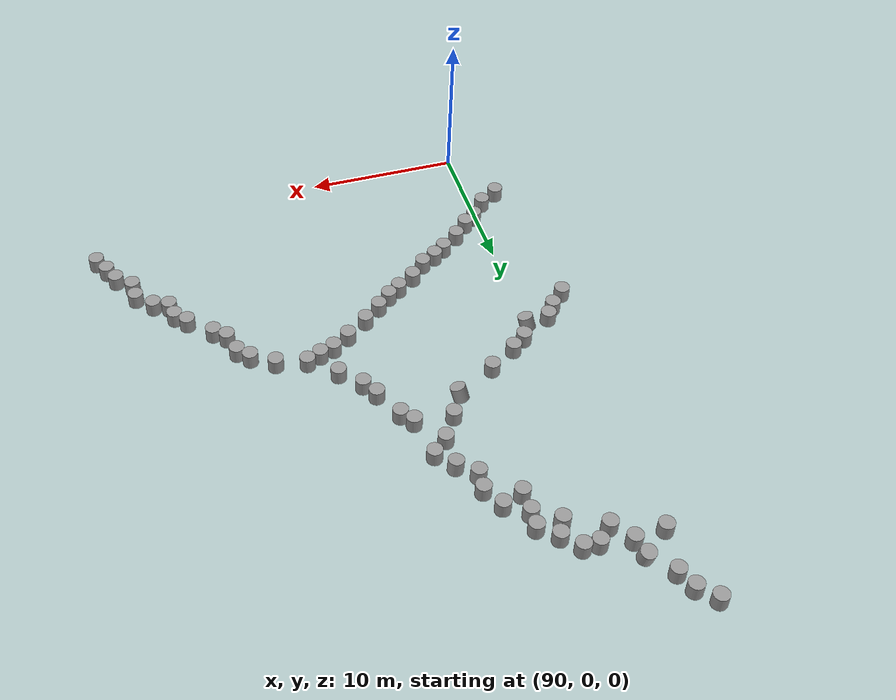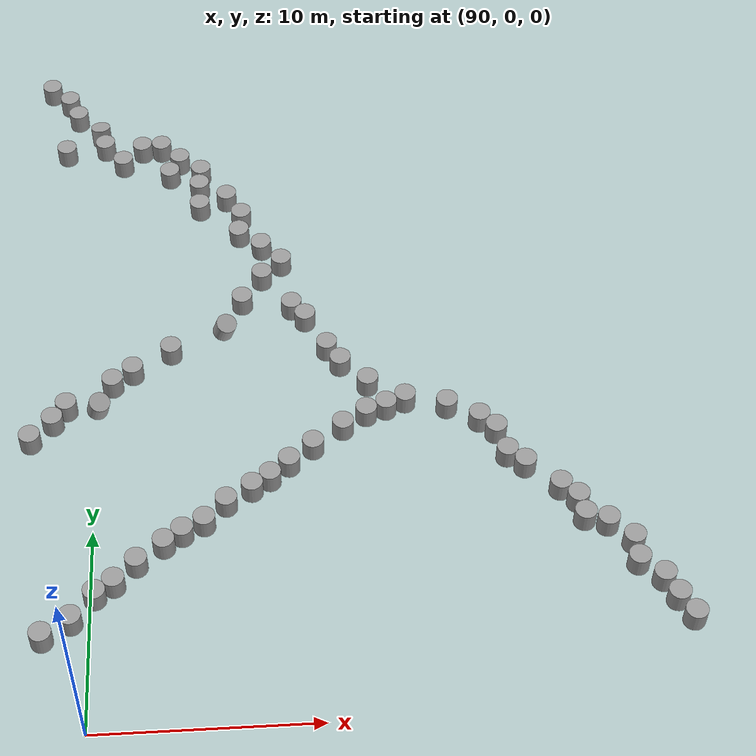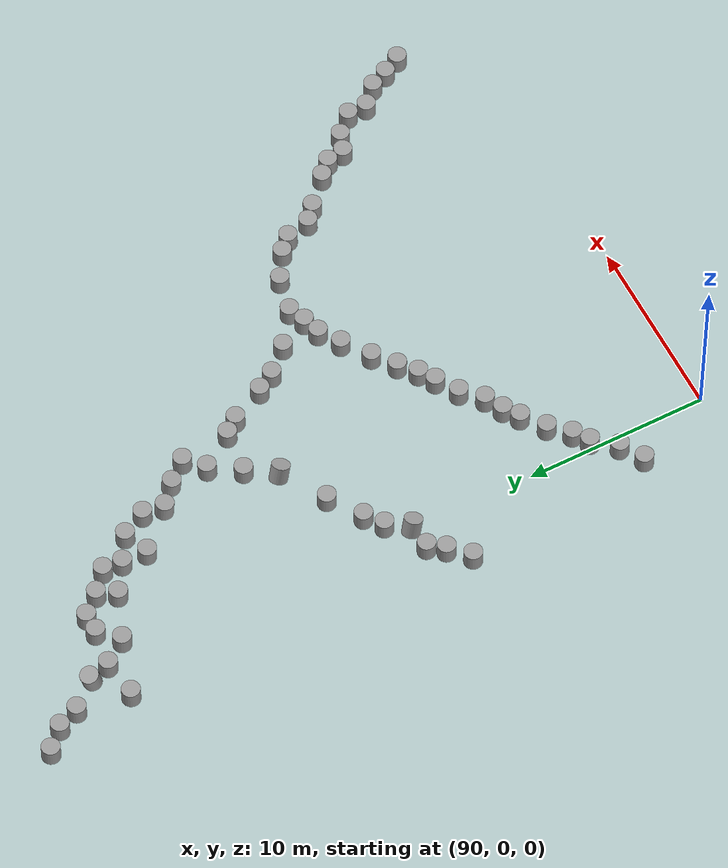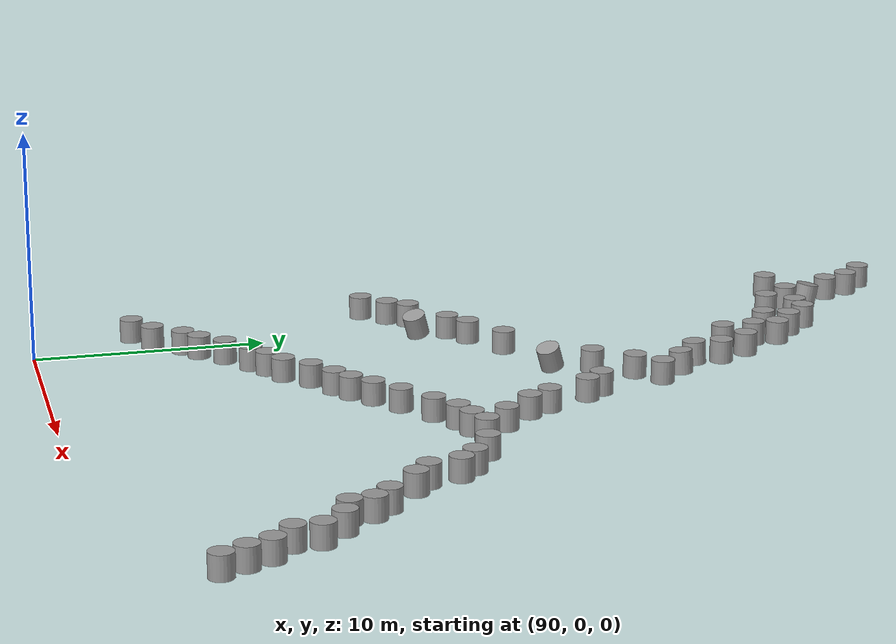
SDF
<sdf version="1.7">
 <world name="default">
  <model name="unit_cylinder_85_clone_244_clone_418">
   <pose>86.9993 15.0013 0.454119 -0.002082 -0.001146 0.00044</pose>
   <link name="link">
    <inertial>
     <mass>1</mass>
     <inertia><ixx>0.145833</ixx><ixy>0</ixy><ixz>0</ixz><iyy>0.145833</iyy><iyz>0</iyz><izz>0.125</izz></inertia>
    </inertial>
    <collision name="collision">
     <geometry><cylinder><radius>0.5</radius><length>1</length></cylinder></geometry>
    </collision>
    <visual name="visual">
     <geometry><cylinder><radius>0.5</radius><length>1</length></cylinder></geometry>
     <material>
      <script><name>Gazebo/Grey</name><uri>file://media/materials/scripts/gazebo.material</uri></script>
     </material>
    </visual>
   </link>
  </model>
  <model name="unit_cylinder_85_clone_244_clone_419">
   <pose>90.0981 16.8678 0.387033 0.27396 0.197852 0.028849</pose>
   <link name="link">
    <inertial>
     <mass>1</mass>
     <inertia><ixx>0.145833</ixx><ixy>0</ixy><ixz>0</ixz><iyy>0.145833</iyy><iyz>0</iyz><izz>0.125</izz></inertia>
    </inertial>
    <collision name="collision">
     <geometry><cylinder><radius>0.5</radius><length>1</length></cylinder></geometry>
    </collision>
    <visual name="visual">
     <geometry><cylinder><radius>0.5</radius><length>1</length></cylinder></geometry>
     <material>
      <script><name>Gazebo/Grey</name><uri>file://media/materials/scripts/gazebo.material</uri></script>
     </material>
    </visual>
   </link>
  </model>
  <model name="unit_cylinder_85_clone_244_clone_420">
   <pose>91.6965 18.8383 0.451552 -0.002042 -0.001126 0.000428</pose>
   <link name="link">
    <inertial>
     <mass>1</mass>
     <inertia><ixx>0.145833</ixx><ixy>0</ixy><ixz>0</ixz><iyy>0.145833</iyy><iyz>0</iyz><izz>0.125</izz></inertia>
    </inertial>
    <collision name="collision">
     <geometry><cylinder><radius>0.5</radius><length>1</length></cylinder></geometry>
    </collision>
    <visual name="visual">
     <geometry><cylinder><radius>0.5</radius><length>1</length></cylinder></geometry>
     <material>
      <script><name>Gazebo/Grey</name><uri>file://media/materials/scripts/gazebo.material</uri></script>
     </material>
    </visual>
   </link>
  </model>
  <model name="unit_cylinder_85_clone_244_clone_421">
   <pose>93.5159 20.0012 0.451221 -0.002038 -0.001117 0.000434</pose>
   <link name="link">
    <inertial>
     <mass>1</mass>
     <inertia><ixx>0.145833</ixx><ixy>0</ixy><ixz>0</ixz><iyy>0.145833</iyy><iyz>0</iyz><izz>0.125</izz></inertia>
    </inertial>
    <collision name="collision">
     <geometry><cylinder><radius>0.5</radius><length>1</length></cylinder></geometry>
    </collision>
    <visual name="visual">
     <geometry><cylinder><radius>0.5</radius><length>1</length></cylinder></geometry>
     <material>
      <script><name>Gazebo/Grey</name><uri>file://media/materials/scripts/gazebo.material</uri></script>
     </material>
    </visual>
   </link>
  </model>
  <model name="unit_cylinder_85_clone_244_clone_422">
   <pose>96.1091 21.3819 0.397629 0.305736 0.215941 0.042722</pose>
   <link name="link">
    <inertial>
     <mass>1</mass>
     <inertia><ixx>0.145833</ixx><ixy>0</ixy><ixz>0</ixz><iyy>0.145833</iyy><iyz>0</iyz><izz>0.125</izz></inertia>
    </inertial>
    <collision name="collision">
     <geometry><cylinder><radius>0.5</radius><length>1</length></cylinder></geometry>
    </collision>
    <visual name="visual">
     <geometry><cylinder><radius>0.5</radius><length>1</length></cylinder></geometry>
     <material>
      <script><name>Gazebo/Grey</name><uri>file://media/materials/scripts/gazebo.material</uri></script>
     </material>
    </visual>
   </link>
  </model>
  <model name="unit_cylinder_85_clone_244_clone_423">
   <pose>96.9995 23.0013 0.449036 -0.001971 -0.001079 -0.000174</pose>
   <link name="link">
    <inertial>
     <mass>1</mass>
     <inertia><ixx>0.145833</ixx><ixy>0</ixy><ixz>0</ixz><iyy>0.145833</iyy><iyz>0</iyz><izz>0.125</izz></inertia>
    </inertial>
    <collision name="collision">
     <geometry><cylinder><radius>0.5</radius><length>1</length></cylinder></geometry>
    </collision>
    <visual name="visual">
     <geometry><cylinder><radius>0.5</radius><length>1</length></cylinder></geometry>
     <material>
      <script><name>Gazebo/Grey</name><uri>file://media/materials/scripts/gazebo.material</uri></script>
     </material>
    </visual>
   </link>
  </model>
  <model name="unit_cylinder_85_clone_244_clone_424">
   <pose>98.01 24.5832 0.410711 -0.01938 0.018277 -0.00079</pose>
   <link name="link">
    <inertial>
     <mass>1</mass>
     <inertia><ixx>0.145833</ixx><ixy>0</ixy><ixz>0</ixz><iyy>0.145833</iyy><iyz>0</iyz><izz>0.125</izz></inertia>
    </inertial>
    <collision name="collision">
     <geometry><cylinder><radius>0.5</radius><length>1</length></cylinder></geometry>
    </collision>
    <visual name="visual">
     <geometry><cylinder><radius>0.5</radius><length>1</length></cylinder></geometry>
     <material>
      <script><name>Gazebo/Grey</name><uri>file://media/materials/scripts/gazebo.material</uri></script>
     </material>
    </visual>
   </link>
  </model>
  <model name="unit_cylinder_85_clone_244_clone_425">
   <pose>99.0016 25.5137 0.388708 -0.001297 0.00599 0.003775</pose>
   <link name="link">
    <inertial>
     <mass>1</mass>
     <inertia><ixx>0.145833</ixx><ixy>0</ixy><ixz>0</ixz><iyy>0.145833</iyy><iyz>0</iyz><izz>0.125</izz></inertia>
    </inertial>
    <collision name="collision">
     <geometry><cylinder><radius>0.5</radius><length>1</length></cylinder></geometry>
    </collision>
    <visual name="visual">
     <geometry><cylinder><radius>0.5</radius><length>1</length></cylinder></geometry>
     <material>
      <script><name>Gazebo/Grey</name><uri>file://media/materials/scripts/gazebo.material</uri></script>
     </material>
    </visual>
   </link>
  </model>
  <model name="unit_cylinder_85_clone_244_clone_426">
   <pose>98.055 26.6274 0.422068 0.054141 -0.055661 0.000631</pose>
   <link name="link">
    <inertial>
     <mass>1</mass>
     <inertia><ixx>0.145833</ixx><ixy>0</ixy><ixz>0</ixz><iyy>0.145833</iyy><iyz>0</iyz><izz>0.125</izz></inertia>
    </inertial>
    <collision name="collision">
     <geometry><cylinder><radius>0.5</radius><length>1</length></cylinder></geometry>
    </collision>
    <visual name="visual">
     <geometry><cylinder><radius>0.5</radius><length>1</length></cylinder></geometry>
     <material>
      <script><name>Gazebo/Grey</name><uri>file://media/materials/scripts/gazebo.material</uri></script>
     </material>
    </visual>
   </link>
  </model>
  <model name="unit_cylinder_85_clone_244_clone_427">
   <pose>96.9613 27.5798 0.42237 0.038682 -0.039421 -0.018848</pose>
   <link name="link">
    <inertial>
     <mass>1</mass>
     <inertia><ixx>0.145833</ixx><ixy>0</ixy><ixz>0</ixz><iyy>0.145833</iyy><iyz>0</iyz><izz>0.125</izz></inertia>
    </inertial>
    <collision name="collision">
     <geometry><cylinder><radius>0.5</radius><length>1</length></cylinder></geometry>
    </collision>
    <visual name="visual">
     <geometry><cylinder><radius>0.5</radius><length>1</length></cylinder></geometry>
     <material>
      <script><name>Gazebo/Grey</name><uri>file://media/materials/scripts/gazebo.material</uri></script>
     </material>
    </visual>
   </link>
  </model>
  <model name="unit_cylinder_85_clone_244_clone_428">
   <pose>97.0797 28.7716 0.452677 -0.000491 0.001579 -0.065909</pose>
   <link name="link">
    <inertial>
     <mass>1</mass>
     <inertia><ixx>0.145833</ixx><ixy>0</ixy><ixz>0</ixz><iyy>0.145833</iyy><iyz>0</iyz><izz>0.125</izz></inertia>
    </inertial>
    <collision name="collision">
     <geometry><cylinder><radius>0.5</radius><length>1</length></cylinder></geometry>
    </collision>
    <visual name="visual">
     <geometry><cylinder><radius>0.5</radius><length>1</length></cylinder></geometry>
     <material>
      <script><name>Gazebo/Grey</name><uri>file://media/materials/scripts/gazebo.material</uri></script>
     </material>
    </visual>
   </link>
  </model>
  <model name="unit_cylinder_85_clone_244_clone_429">
   <pose>94.981 30.984 0.452912 0.017161 -0.020378 0.000264</pose>
   <link name="link">
    <inertial>
     <mass>1</mass>
     <inertia><ixx>0.145833</ixx><ixy>0</ixy><ixz>0</ixz><iyy>0.145833</iyy><iyz>0</iyz><izz>0.125</izz></inertia>
    </inertial>
    <collision name="collision">
     <geometry><cylinder><radius>0.5</radius><length>1</length></cylinder></geometry>
    </collision>
    <visual name="visual">
     <geometry><cylinder><radius>0.5</radius><length>1</length></cylinder></geometry>
     <material>
      <script><name>Gazebo/Grey</name><uri>file://media/materials/scripts/gazebo.material</uri></script>
     </material>
    </visual>
   </link>
  </model>
  <model name="unit_cylinder_85_clone_244_clone_430">
   <pose>94.9879 29.5724 0.426325 0.02224 -0.025206 5.9e-05</pose>
   <link name="link">
    <inertial>
     <mass>1</mass>
     <inertia><ixx>0.145833</ixx><ixy>0</ixy><ixz>0</ixz><iyy>0.145833</iyy><iyz>0</iyz><izz>0.125</izz></inertia>
    </inertial>
    <collision name="collision">
     <geometry><cylinder><radius>0.5</radius><length>1</length></cylinder></geometry>
    </collision>
    <visual name="visual">
     <geometry><cylinder><radius>0.5</radius><length>1</length></cylinder></geometry>
     <material>
      <script><name>Gazebo/Grey</name><uri>file://media/materials/scripts/gazebo.material</uri></script>
     </material>
    </visual>
   </link>
  </model>
  <model name="unit_cylinder_85_clone_244_clone_431">
   <pose>93.4514 31.9892 0.438991 0.017168 -0.020386 0.000183</pose>
   <link name="link">
    <inertial>
     <mass>1</mass>
     <inertia><ixx>0.145833</ixx><ixy>0</ixy><ixz>0</ixz><iyy>0.145833</iyy><iyz>0</iyz><izz>0.125</izz></inertia>
    </inertial>
    <collision name="collision">
     <geometry><cylinder><radius>0.5</radius><length>1</length></cylinder></geometry>
    </collision>
    <visual name="visual">
     <geometry><cylinder><radius>0.5</radius><length>1</length></cylinder></geometry>
     <material>
      <script><name>Gazebo/Grey</name><uri>file://media/materials/scripts/gazebo.material</uri></script>
     </material>
    </visual>
   </link>
  </model>
  <model name="unit_cylinder_85_clone_244_clone_432">
   <pose>90.9929 32.9976 0.418447 0.003841 -0.010925 0.000165</pose>
   <link name="link">
    <inertial>
     <mass>1</mass>
     <inertia><ixx>0.145833</ixx><ixy>0</ixy><ixz>0</ixz><iyy>0.145833</iyy><iyz>0</iyz><izz>0.125</izz></inertia>
    </inertial>
    <collision name="collision">
     <geometry><cylinder><radius>0.5</radius><length>1</length></cylinder></geometry>
    </collision>
    <visual name="visual">
     <geometry><cylinder><radius>0.5</radius><length>1</length></cylinder></geometry>
     <material>
      <script><name>Gazebo/Grey</name><uri>file://media/materials/scripts/gazebo.material</uri></script>
     </material>
    </visual>
   </link>
  </model>
  <model name="unit_cylinder_85_clone_244_clone_433">
   <pose>91.9907 33.9984 0.438965 0.001966 -0.015506 -0.002097</pose>
   <link name="link">
    <inertial>
     <mass>1</mass>
     <inertia><ixx>0.145833</ixx><ixy>0</ixy><ixz>0</ixz><iyy>0.145833</iyy><iyz>0</iyz><izz>0.125</izz></inertia>
    </inertial>
    <collision name="collision">
     <geometry><cylinder><radius>0.5</radius><length>1</length></cylinder></geometry>
    </collision>
    <visual name="visual">
     <geometry><cylinder><radius>0.5</radius><length>1</length></cylinder></geometry>
     <material>
      <script><name>Gazebo/Grey</name><uri>file://media/materials/scripts/gazebo.material</uri></script>
     </material>
    </visual>
   </link>
  </model>
  <model name="unit_cylinder_85_clone_244_clone_434">
   <pose>90.0242 34.2771 0.412227 0.00243 -0.011067 -0.039827</pose>
   <link name="link">
    <inertial>
     <mass>1</mass>
     <inertia><ixx>0.145833</ixx><ixy>0</ixy><ixz>0</ixz><iyy>0.145833</iyy><iyz>0</iyz><izz>0.125</izz></inertia>
    </inertial>
    <collision name="collision">
     <geometry><cylinder><radius>0.5</radius><length>1</length></cylinder></geometry>
    </collision>
    <visual name="visual">
     <geometry><cylinder><radius>0.5</radius><length>1</length></cylinder></geometry>
     <material>
      <script><name>Gazebo/Grey</name><uri>file://media/materials/scripts/gazebo.material</uri></script>
     </material>
    </visual>
   </link>
  </model>
  <model name="unit_cylinder_85_clone_244_clone_435">
   <pose>87.9998 34.003 0.398165 -0.004691 -0.000577 0.00078</pose>
   <link name="link">
    <inertial>
     <mass>1</mass>
     <inertia><ixx>0.145833</ixx><ixy>0</ixy><ixz>0</ixz><iyy>0.145833</iyy><iyz>0</iyz><izz>0.125</izz></inertia>
    </inertial>
    <collision name="collision">
     <geometry><cylinder><radius>0.5</radius><length>1</length></cylinder></geometry>
    </collision>
    <visual name="visual">
     <geometry><cylinder><radius>0.5</radius><length>1</length></cylinder></geometry>
     <material>
      <script><name>Gazebo/Grey</name><uri>file://media/materials/scripts/gazebo.material</uri></script>
     </material>
    </visual>
   </link>
  </model>
  <model name="unit_cylinder_85_clone_244_clone_436">
   <pose>96.3553 30.1259 0.453288 -0.000499 0.001658 -0.010262</pose>
   <link name="link">
    <inertial>
     <mass>1</mass>
     <inertia><ixx>0.145833</ixx><ixy>0</ixy><ixz>0</ixz><iyy>0.145833</iyy><iyz>0</iyz><izz>0.125</izz></inertia>
    </inertial>
    <collision name="collision">
     <geometry><cylinder><radius>0.5</radius><length>1</length></cylinder></geometry>
    </collision>
    <visual name="visual">
     <geometry><cylinder><radius>0.5</radius><length>1</length></cylinder></geometry>
     <material>
      <script><name>Gazebo/Grey</name><uri>file://media/materials/scripts/gazebo.material</uri></script>
     </material>
    </visual>
   </link>
  </model>
  <model name="unit_cylinder_85_clone_244_clone_437">
   <pose>95.0518 32.0559 0.454425 -0.000693 0.001807 -0.001525</pose>
   <link name="link">
    <inertial>
     <mass>1</mass>
     <inertia><ixx>0.145833</ixx><ixy>0</ixy><ixz>0</ixz><iyy>0.145833</iyy><iyz>0</iyz><izz>0.125</izz></inertia>
    </inertial>
    <collision name="collision">
     <geometry><cylinder><radius>0.5</radius><length>1</length></cylinder></geometry>
    </collision>
    <visual name="visual">
     <geometry><cylinder><radius>0.5</radius><length>1</length></cylinder></geometry>
     <material>
      <script><name>Gazebo/Grey</name><uri>file://media/materials/scripts/gazebo.material</uri></script>
     </material>
    </visual>
   </link>
  </model>
  <model name="unit_cylinder_85_clone_244_clone_438">
   <pose>93.9544 32.9854 0.455838 -0.000827 0.002164 0.000424</pose>
   <link name="link">
    <inertial>
     <mass>1</mass>
     <inertia><ixx>0.145833</ixx><ixy>0</ixy><ixz>0</ixz><iyy>0.145833</iyy><iyz>0</iyz><izz>0.125</izz></inertia>
    </inertial>
    <collision name="collision">
     <geometry><cylinder><radius>0.5</radius><length>1</length></cylinder></geometry>
    </collision>
    <visual name="visual">
     <geometry><cylinder><radius>0.5</radius><length>1</length></cylinder></geometry>
     <material>
      <script><name>Gazebo/Grey</name><uri>file://media/materials/scripts/gazebo.material</uri></script>
     </material>
    </visual>
   </link>
  </model>
  <model name="unit_cylinder_85_clone_244_clone_439">
   <pose>92.9958 34.0053 0.449451 -0.008427 -0.006629 0.00051</pose>
   <link name="link">
    <inertial>
     <mass>1</mass>
     <inertia><ixx>0.145833</ixx><ixy>0</ixy><ixz>0</ixz><iyy>0.145833</iyy><iyz>0</iyz><izz>0.125</izz></inertia>
    </inertial>
    <collision name="collision">
     <geometry><cylinder><radius>0.5</radius><length>1</length></cylinder></geometry>
    </collision>
    <visual name="visual">
     <geometry><cylinder><radius>0.5</radius><length>1</length></cylinder></geometry>
     <material>
      <script><name>Gazebo/Grey</name><uri>file://media/materials/scripts/gazebo.material</uri></script>
     </material>
    </visual>
   </link>
  </model>
  <model name="unit_cylinder_85_clone_244_clone_440">
   <pose>90.7454 18.1329 0.451925 -0.00205 -0.001126 0.00021</pose>
   <link name="link">
    <inertial>
     <mass>1</mass>
     <inertia><ixx>0.145833</ixx><ixy>0</ixy><ixz>0</ixz><iyy>0.145833</iyy><iyz>0</iyz><izz>0.125</izz></inertia>
    </inertial>
    <collision name="collision">
     <geometry><cylinder><radius>0.5</radius><length>1</length></cylinder></geometry>
    </collision>
    <visual name="visual">
     <geometry><cylinder><radius>0.5</radius><length>1</length></cylinder></geometry>
     <material>
      <script><name>Gazebo/Grey</name><uri>file://media/materials/scripts/gazebo.material</uri></script>
     </material>
    </visual>
   </link>
  </model>
  <model name="unit_cylinder_85_clone_244_clone_441">
   <pose>88.6087 16.8283 0.452181 -0.002023 -0.001112 -0.002175</pose>
   <link name="link">
    <inertial>
     <mass>1</mass>
     <inertia><ixx>0.145833</ixx><ixy>0</ixy><ixz>0</ixz><iyy>0.145833</iyy><iyz>0</iyz><izz>0.125</izz></inertia>
    </inertial>
    <collision name="collision">
     <geometry><cylinder><radius>0.5</radius><length>1</length></cylinder></geometry>
    </collision>
    <visual name="visual">
     <geometry><cylinder><radius>0.5</radius><length>1</length></cylinder></geometry>
     <material>
      <script><name>Gazebo/Grey</name><uri>file://media/materials/scripts/gazebo.material</uri></script>
     </material>
    </visual>
   </link>
  </model>
  <model name="unit_cylinder_85_clone_244_clone_442">
   <pose>87.9995 16.0013 0.45319 -0.002081 -0.001147 0.000938</pose>
   <link name="link">
    <inertial>
     <mass>1</mass>
     <inertia><ixx>0.145833</ixx><ixy>0</ixy><ixz>0</ixz><iyy>0.145833</iyy><iyz>0</iyz><izz>0.125</izz></inertia>
    </inertial>
    <collision name="collision">
     <geometry><cylinder><radius>0.5</radius><length>1</length></cylinder></geometry>
    </collision>
    <visual name="visual">
     <geometry><cylinder><radius>0.5</radius><length>1</length></cylinder></geometry>
     <material>
      <script><name>Gazebo/Grey</name><uri>file://media/materials/scripts/gazebo.material</uri></script>
     </material>
    </visual>
   </link>
  </model>
  <model name="unit_cylinder_85_clone_244_clone_522">
   <pose>88.0001 4.47675 0.45126 3.8e-05 3.4e-05 0.00011</pose>
   <link name="link">
    <inertial>
     <mass>1</mass>
     <inertia><ixx>0.145833</ixx><ixy>0</ixy><ixz>0</ixz><iyy>0.145833</iyy><iyz>0</iyz><izz>0.125</izz></inertia>
    </inertial>
    <collision name="collision">
     <geometry><cylinder><radius>0.5</radius><length>1</length></cylinder></geometry>
    </collision>
    <visual name="visual">
     <geometry><cylinder><radius>0.5</radius><length>1</length></cylinder></geometry>
     <material>
      <script><name>Gazebo/Grey</name><uri>file://media/materials/scripts/gazebo.material</uri></script>
     </material>
    </visual>
   </link>
  </model>
  <model name="unit_cylinder_85_clone_244_clone_523">
   <pose>89.2258 5.23936 0.451241 1e-05 8e-06 -0.000895</pose>
   <link name="link">
    <inertial>
     <mass>1</mass>
     <inertia><ixx>0.145833</ixx><ixy>0</ixy><ixz>0</ixz><iyy>0.145833</iyy><iyz>0</iyz><izz>0.125</izz></inertia>
    </inertial>
    <collision name="collision">
     <geometry><cylinder><radius>0.5</radius><length>1</length></cylinder></geometry>
    </collision>
    <visual name="visual">
     <geometry><cylinder><radius>0.5</radius><length>1</length></cylinder></geometry>
     <material>
      <script><name>Gazebo/Grey</name><uri>file://media/materials/scripts/gazebo.material</uri></script>
     </material>
    </visual>
   </link>
  </model>
  <model name="unit_cylinder_85_clone_244_clone_524">
   <pose>90.2172 6.44223 0.451257 4.2e-05 3.7e-05 -0.000526</pose>
   <link name="link">
    <inertial>
     <mass>1</mass>
     <inertia><ixx>0.145833</ixx><ixy>0</ixy><ixz>0</ixz><iyy>0.145833</iyy><iyz>0</iyz><izz>0.125</izz></inertia>
    </inertial>
    <collision name="collision">
     <geometry><cylinder><radius>0.5</radius><length>1</length></cylinder></geometry>
    </collision>
    <visual name="visual">
     <geometry><cylinder><radius>0.5</radius><length>1</length></cylinder></geometry>
     <material>
      <script><name>Gazebo/Grey</name><uri>file://media/materials/scripts/gazebo.material</uri></script>
     </material>
    </visual>
   </link>
  </model>
  <model name="unit_cylinder_85_clone_244_clone_525">
   <pose>91.0321 7.02202 0.451251 3.2e-05 2.9e-05 0.000218</pose>
   <link name="link">
    <inertial>
     <mass>1</mass>
     <inertia><ixx>0.145833</ixx><ixy>0</ixy><ixz>0</ixz><iyy>0.145833</iyy><iyz>0</iyz><izz>0.125</izz></inertia>
    </inertial>
    <collision name="collision">
     <geometry><cylinder><radius>0.5</radius><length>1</length></cylinder></geometry>
    </collision>
    <visual name="visual">
     <geometry><cylinder><radius>0.5</radius><length>1</length></cylinder></geometry>
     <material>
      <script><name>Gazebo/Grey</name><uri>file://media/materials/scripts/gazebo.material</uri></script>
     </material>
    </visual>
   </link>
  </model>
  <model name="unit_cylinder_85_clone_244_clone_526">
   <pose>92.0009 8.00032 0.451262 5.2e-05 4e-05 -0.002902</pose>
   <link name="link">
    <inertial>
     <mass>1</mass>
     <inertia><ixx>0.145833</ixx><ixy>0</ixy><ixz>0</ixz><iyy>0.145833</iyy><iyz>0</iyz><izz>0.125</izz></inertia>
    </inertial>
    <collision name="collision">
     <geometry><cylinder><radius>0.5</radius><length>1</length></cylinder></geometry>
    </collision>
    <visual name="visual">
     <geometry><cylinder><radius>0.5</radius><length>1</length></cylinder></geometry>
     <material>
      <script><name>Gazebo/Grey</name><uri>file://media/materials/scripts/gazebo.material</uri></script>
     </material>
    </visual>
   </link>
  </model>
  <model name="unit_cylinder_85_clone_244_clone_527">
   <pose>93.1982 8.9167 0.451266 4.1e-05 3.5e-05 -0.000263</pose>
   <link name="link">
    <inertial>
     <mass>1</mass>
     <inertia><ixx>0.145833</ixx><ixy>0</ixy><ixz>0</ixz><iyy>0.145833</iyy><iyz>0</iyz><izz>0.125</izz></inertia>
    </inertial>
    <collision name="collision">
     <geometry><cylinder><radius>0.5</radius><length>1</length></cylinder></geometry>
    </collision>
    <visual name="visual">
     <geometry><cylinder><radius>0.5</radius><length>1</length></cylinder></geometry>
     <material>
      <script><name>Gazebo/Grey</name><uri>file://media/materials/scripts/gazebo.material</uri></script>
     </material>
    </visual>
   </link>
  </model>
  <model name="unit_cylinder_85_clone_244_clone_528">
   <pose>94.0183 9.48893 0.451257 3.2e-05 2.4e-05 0.00025</pose>
   <link name="link">
    <inertial>
     <mass>1</mass>
     <inertia><ixx>0.145833</ixx><ixy>0</ixy><ixz>0</ixz><iyy>0.145833</iyy><iyz>0</iyz><izz>0.125</izz></inertia>
    </inertial>
    <collision name="collision">
     <geometry><cylinder><radius>0.5</radius><length>1</length></cylinder></geometry>
    </collision>
    <visual name="visual">
     <geometry><cylinder><radius>0.5</radius><length>1</length></cylinder></geometry>
     <material>
      <script><name>Gazebo/Grey</name><uri>file://media/materials/scripts/gazebo.material</uri></script>
     </material>
    </visual>
   </link>
  </model>
  <model name="unit_cylinder_85_clone_244_clone_529">
   <pose>95 10 0.451239 0 -0 0.000459</pose>
   <link name="link">
    <inertial>
     <mass>1</mass>
     <inertia><ixx>0.145833</ixx><ixy>0</ixy><ixz>0</ixz><iyy>0.145833</iyy><iyz>0</iyz><izz>0.125</izz></inertia>
    </inertial>
    <collision name="collision">
     <geometry><cylinder><radius>0.5</radius><length>1</length></cylinder></geometry>
    </collision>
    <visual name="visual">
     <geometry><cylinder><radius>0.5</radius><length>1</length></cylinder></geometry>
     <material>
      <script><name>Gazebo/Grey</name><uri>file://media/materials/scripts/gazebo.material</uri></script>
     </material>
    </visual>
   </link>
  </model>
  <model name="unit_cylinder_85_clone_244_clone_530">
   <pose>96.0001 11 0.451273 5e-05 4.3e-05 0.000143</pose>
   <link name="link">
    <inertial>
     <mass>1</mass>
     <inertia><ixx>0.145833</ixx><ixy>0</ixy><ixz>0</ixz><iyy>0.145833</iyy><iyz>0</iyz><izz>0.125</izz></inertia>
    </inertial>
    <collision name="collision">
     <geometry><cylinder><radius>0.5</radius><length>1</length></cylinder></geometry>
    </collision>
    <visual name="visual">
     <geometry><cylinder><radius>0.5</radius><length>1</length></cylinder></geometry>
     <material>
      <script><name>Gazebo/Grey</name><uri>file://media/materials/scripts/gazebo.material</uri></script>
     </material>
    </visual>
   </link>
  </model>
  <model name="unit_cylinder_85_clone_244_clone_531">
   <pose>97.1805 11.7463 0.451241 1.8e-05 1.4e-05 -0.002162</pose>
   <link name="link">
    <inertial>
     <mass>1</mass>
     <inertia><ixx>0.145833</ixx><ixy>0</ixy><ixz>0</ixz><iyy>0.145833</iyy><iyz>0</iyz><izz>0.125</izz></inertia>
    </inertial>
    <collision name="collision">
     <geometry><cylinder><radius>0.5</radius><length>1</length></cylinder></geometry>
    </collision>
    <visual name="visual">
     <geometry><cylinder><radius>0.5</radius><length>1</length></cylinder></geometry>
     <material>
      <script><name>Gazebo/Grey</name><uri>file://media/materials/scripts/gazebo.material</uri></script>
     </material>
    </visual>
   </link>
  </model>
  <model name="unit_cylinder_85_clone_244_clone_532">
   <pose>98.0195 12.2915 0.451231 1e-06 -0 0.004588</pose>
   <link name="link">
    <inertial>
     <mass>1</mass>
     <inertia><ixx>0.145833</ixx><ixy>0</ixy><ixz>0</ixz><iyy>0.145833</iyy><iyz>0</iyz><izz>0.125</izz></inertia>
    </inertial>
    <collision name="collision">
     <geometry><cylinder><radius>0.5</radius><length>1</length></cylinder></geometry>
    </collision>
    <visual name="visual">
     <geometry><cylinder><radius>0.5</radius><length>1</length></cylinder></geometry>
     <material>
      <script><name>Gazebo/Grey</name><uri>file://media/materials/scripts/gazebo.material</uri></script>
     </material>
    </visual>
   </link>
  </model>
  <model name="unit_cylinder_85_clone_244_clone_533">
   <pose>98.9157 13.0511 0.45124 9e-06 7e-06 0.00148</pose>
   <link name="link">
    <inertial>
     <mass>1</mass>
     <inertia><ixx>0.145833</ixx><ixy>0</ixy><ixz>0</ixz><iyy>0.145833</iyy><iyz>0</iyz><izz>0.125</izz></inertia>
    </inertial>
    <collision name="collision">
     <geometry><cylinder><radius>0.5</radius><length>1</length></cylinder></geometry>
    </collision>
    <visual name="visual">
     <geometry><cylinder><radius>0.5</radius><length>1</length></cylinder></geometry>
     <material>
      <script><name>Gazebo/Grey</name><uri>file://media/materials/scripts/gazebo.material</uri></script>
     </material>
    </visual>
   </link>
  </model>
  <model name="unit_cylinder_85_clone_244_clone_534">
   <pose>100.056 13.9644 0.451248 1.6e-05 1.2e-05 -0.00048</pose>
   <link name="link">
    <inertial>
     <mass>1</mass>
     <inertia><ixx>0.145833</ixx><ixy>0</ixy><ixz>0</ixz><iyy>0.145833</iyy><iyz>0</iyz><izz>0.125</izz></inertia>
    </inertial>
    <collision name="collision">
     <geometry><cylinder><radius>0.5</radius><length>1</length></cylinder></geometry>
    </collision>
    <visual name="visual">
     <geometry><cylinder><radius>0.5</radius><length>1</length></cylinder></geometry>
     <material>
      <script><name>Gazebo/Grey</name><uri>file://media/materials/scripts/gazebo.material</uri></script>
     </material>
    </visual>
   </link>
  </model>
  <model name="unit_cylinder_85_clone_244_clone_535">
   <pose>101.494 15 0.451244 -4e-06 -1e-06 0.00059</pose>
   <link name="link">
    <inertial>
     <mass>1</mass>
     <inertia><ixx>0.145833</ixx><ixy>0</ixy><ixz>0</ixz><iyy>0.145833</iyy><iyz>0</iyz><izz>0.125</izz></inertia>
    </inertial>
    <collision name="collision">
     <geometry><cylinder><radius>0.5</radius><length>1</length></cylinder></geometry>
    </collision>
    <visual name="visual">
     <geometry><cylinder><radius>0.5</radius><length>1</length></cylinder></geometry>
     <material>
      <script><name>Gazebo/Grey</name><uri>file://media/materials/scripts/gazebo.material</uri></script>
     </material>
    </visual>
   </link>
  </model>
  <model name="unit_cylinder_85_clone_244_clone_536">
   <pose>102.63 15.7463 0.451245 -2e-06 -5e-06 0.000739</pose>
   <link name="link">
    <inertial>
     <mass>1</mass>
     <inertia><ixx>0.145833</ixx><ixy>0</ixy><ixz>0</ixz><iyy>0.145833</iyy><iyz>0</iyz><izz>0.125</izz></inertia>
    </inertial>
    <collision name="collision">
     <geometry><cylinder><radius>0.5</radius><length>1</length></cylinder></geometry>
    </collision>
    <visual name="visual">
     <geometry><cylinder><radius>0.5</radius><length>1</length></cylinder></geometry>
     <material>
      <script><name>Gazebo/Grey</name><uri>file://media/materials/scripts/gazebo.material</uri></script>
     </material>
    </visual>
   </link>
  </model>
  <model name="unit_cylinder_85_clone_244_clone_537">
   <pose>103.578 16.0723 0.451246 4e-06 -6e-06 0.006501</pose>
   <link name="link">
    <inertial>
     <mass>1</mass>
     <inertia><ixx>0.145833</ixx><ixy>0</ixy><ixz>0</ixz><iyy>0.145833</iyy><iyz>0</iyz><izz>0.125</izz></inertia>
    </inertial>
    <collision name="collision">
     <geometry><cylinder><radius>0.5</radius><length>1</length></cylinder></geometry>
    </collision>
    <visual name="visual">
     <geometry><cylinder><radius>0.5</radius><length>1</length></cylinder></geometry>
     <material>
      <script><name>Gazebo/Grey</name><uri>file://media/materials/scripts/gazebo.material</uri></script>
     </material>
    </visual>
   </link>
  </model>
  <model name="unit_cylinder_85_clone_244_clone_538">
   <pose>104.502 16.4555 0.451252 9e-06 -1.2e-05 -0.000378</pose>
   <link name="link">
    <inertial>
     <mass>1</mass>
     <inertia><ixx>0.145833</ixx><ixy>0</ixy><ixz>0</ixz><iyy>0.145833</iyy><iyz>0</iyz><izz>0.125</izz></inertia>
    </inertial>
    <collision name="collision">
     <geometry><cylinder><radius>0.5</radius><length>1</length></cylinder></geometry>
    </collision>
    <visual name="visual">
     <geometry><cylinder><radius>0.5</radius><length>1</length></cylinder></geometry>
     <material>
      <script><name>Gazebo/Grey</name><uri>file://media/materials/scripts/gazebo.material</uri></script>
     </material>
    </visual>
   </link>
  </model>
  <model name="unit_cylinder_85_clone_244_clone_539">
   <pose>106.437 16 0.451266 6e-06 -9e-06 0.000449</pose>
   <link name="link">
    <inertial>
     <mass>1</mass>
     <inertia><ixx>0.145833</ixx><ixy>0</ixy><ixz>0</ixz><iyy>0.145833</iyy><iyz>0</iyz><izz>0.125</izz></inertia>
    </inertial>
    <collision name="collision">
     <geometry><cylinder><radius>0.5</radius><length>1</length></cylinder></geometry>
    </collision>
    <visual name="visual">
     <geometry><cylinder><radius>0.5</radius><length>1</length></cylinder></geometry>
     <material>
      <script><name>Gazebo/Grey</name><uri>file://media/materials/scripts/gazebo.material</uri></script>
     </material>
    </visual>
   </link>
  </model>
  <model name="unit_cylinder_85_clone_244_clone_540">
   <pose>107.88 15.1203 0.451275 1.2e-05 -5e-06 0.000337</pose>
   <link name="link">
    <inertial>
     <mass>1</mass>
     <inertia><ixx>0.145833</ixx><ixy>0</ixy><ixz>0</ixz><iyy>0.145833</iyy><iyz>0</iyz><izz>0.125</izz></inertia>
    </inertial>
    <collision name="collision">
     <geometry><cylinder><radius>0.5</radius><length>1</length></cylinder></geometry>
    </collision>
    <visual name="visual">
     <geometry><cylinder><radius>0.5</radius><length>1</length></cylinder></geometry>
     <material>
      <script><name>Gazebo/Grey</name><uri>file://media/materials/scripts/gazebo.material</uri></script>
     </material>
    </visual>
   </link>
  </model>
  <model name="unit_cylinder_85_clone_244_clone_541">
   <pose>108.586 14.4112 0.451273 2e-06 -1.2e-05 0.000343</pose>
   <link name="link">
    <inertial>
     <mass>1</mass>
     <inertia><ixx>0.145833</ixx><ixy>0</ixy><ixz>0</ixz><iyy>0.145833</iyy><iyz>0</iyz><izz>0.125</izz></inertia>
    </inertial>
    <collision name="collision">
     <geometry><cylinder><radius>0.5</radius><length>1</length></cylinder></geometry>
    </collision>
    <visual name="visual">
     <geometry><cylinder><radius>0.5</radius><length>1</length></cylinder></geometry>
     <material>
      <script><name>Gazebo/Grey</name><uri>file://media/materials/scripts/gazebo.material</uri></script>
     </material>
    </visual>
   </link>
  </model>
  <model name="unit_cylinder_85_clone_244_clone_542">
   <pose>108.948 13.0456 0.451271 4e-06 -8e-06 0.000698</pose>
   <link name="link">
    <inertial>
     <mass>1</mass>
     <inertia><ixx>0.145833</ixx><ixy>0</ixy><ixz>0</ixz><iyy>0.145833</iyy><iyz>0</iyz><izz>0.125</izz></inertia>
    </inertial>
    <collision name="collision">
     <geometry><cylinder><radius>0.5</radius><length>1</length></cylinder></geometry>
    </collision>
    <visual name="visual">
     <geometry><cylinder><radius>0.5</radius><length>1</length></cylinder></geometry>
     <material>
      <script><name>Gazebo/Grey</name><uri>file://media/materials/scripts/gazebo.material</uri></script>
     </material>
    </visual>
   </link>
  </model>
  <model name="unit_cylinder_85_clone_244_clone_543">
   <pose>109.701 12.3881 0.451275 1e-05 -9e-06 0.000696</pose>
   <link name="link">
    <inertial>
     <mass>1</mass>
     <inertia><ixx>0.145833</ixx><ixy>0</ixy><ixz>0</ixz><iyy>0.145833</iyy><iyz>0</iyz><izz>0.125</izz></inertia>
    </inertial>
    <collision name="collision">
     <geometry><cylinder><radius>0.5</radius><length>1</length></cylinder></geometry>
    </collision>
    <visual name="visual">
     <geometry><cylinder><radius>0.5</radius><length>1</length></cylinder></geometry>
     <material>
      <script><name>Gazebo/Grey</name><uri>file://media/materials/scripts/gazebo.material</uri></script>
     </material>
    </visual>
   </link>
  </model>
  <model name="unit_cylinder_85_clone_244_clone_544">
   <pose>111.142 11.0639 0.451271 4e-06 -7e-06 0.000513</pose>
   <link name="link">
    <inertial>
     <mass>1</mass>
     <inertia><ixx>0.145833</ixx><ixy>0</ixy><ixz>0</ixz><iyy>0.145833</iyy><iyz>0</iyz><izz>0.125</izz></inertia>
    </inertial>
    <collision name="collision">
     <geometry><cylinder><radius>0.5</radius><length>1</length></cylinder></geometry>
    </collision>
    <visual name="visual">
     <geometry><cylinder><radius>0.5</radius><length>1</length></cylinder></geometry>
     <material>
      <script><name>Gazebo/Grey</name><uri>file://media/materials/scripts/gazebo.material</uri></script>
     </material>
    </visual>
   </link>
  </model>
  <model name="unit_cylinder_85_clone_244_clone_545">
   <pose>111.842 10.3444 0.451275 3e-06 -8e-06 -0.002982</pose>
   <link name="link">
    <inertial>
     <mass>1</mass>
     <inertia><ixx>0.145833</ixx><ixy>0</ixy><ixz>0</ixz><iyy>0.145833</iyy><iyz>0</iyz><izz>0.125</izz></inertia>
    </inertial>
    <collision name="collision">
     <geometry><cylinder><radius>0.5</radius><length>1</length></cylinder></geometry>
    </collision>
    <visual name="visual">
     <geometry><cylinder><radius>0.5</radius><length>1</length></cylinder></geometry>
     <material>
      <script><name>Gazebo/Grey</name><uri>file://media/materials/scripts/gazebo.material</uri></script>
     </material>
    </visual>
   </link>
  </model>
  <model name="unit_cylinder_85_clone_244_clone_546">
   <pose>112.021 9.36046 0.451273 5e-06 -1.2e-05 -0.000447</pose>
   <link name="link">
    <inertial>
     <mass>1</mass>
     <inertia><ixx>0.145833</ixx><ixy>0</ixy><ixz>0</ixz><iyy>0.145833</iyy><iyz>0</iyz><izz>0.125</izz></inertia>
    </inertial>
    <collision name="collision">
     <geometry><cylinder><radius>0.5</radius><length>1</length></cylinder></geometry>
    </collision>
    <visual name="visual">
     <geometry><cylinder><radius>0.5</radius><length>1</length></cylinder></geometry>
     <material>
      <script><name>Gazebo/Grey</name><uri>file://media/materials/scripts/gazebo.material</uri></script>
     </material>
    </visual>
   </link>
  </model>
  <model name="unit_cylinder_85_clone_244_clone_547">
   <pose>113 9.00001 0.451273 -2e-05 2.3e-05 0.000468</pose>
   <link name="link">
    <inertial>
     <mass>1</mass>
     <inertia><ixx>0.145833</ixx><ixy>0</ixy><ixz>0</ixz><iyy>0.145833</iyy><iyz>0</iyz><izz>0.125</izz></inertia>
    </inertial>
    <collision name="collision">
     <geometry><cylinder><radius>0.5</radius><length>1</length></cylinder></geometry>
    </collision>
    <visual name="visual">
     <geometry><cylinder><radius>0.5</radius><length>1</length></cylinder></geometry>
     <material>
      <script><name>Gazebo/Grey</name><uri>file://media/materials/scripts/gazebo.material</uri></script>
     </material>
    </visual>
   </link>
  </model>
  <model name="unit_cylinder_85_clone_244_clone_548">
   <pose>114 8.00006 0.451283 -4.3e-05 5.9e-05 0.000721</pose>
   <link name="link">
    <inertial>
     <mass>1</mass>
     <inertia><ixx>0.145833</ixx><ixy>0</ixy><ixz>0</ixz><iyy>0.145833</iyy><iyz>0</iyz><izz>0.125</izz></inertia>
    </inertial>
    <collision name="collision">
     <geometry><cylinder><radius>0.5</radius><length>1</length></cylinder></geometry>
    </collision>
    <visual name="visual">
     <geometry><cylinder><radius>0.5</radius><length>1</length></cylinder></geometry>
     <material>
      <script><name>Gazebo/Grey</name><uri>file://media/materials/scripts/gazebo.material</uri></script>
     </material>
    </visual>
   </link>
  </model>
  <model name="unit_cylinder_85_clone_244_clone_549">
   <pose>114.039 6.89527 0.451278 6e-06 -8e-06 0.00042</pose>
   <link name="link">
    <inertial>
     <mass>1</mass>
     <inertia><ixx>0.145833</ixx><ixy>0</ixy><ixz>0</ixz><iyy>0.145833</iyy><iyz>0</iyz><izz>0.125</izz></inertia>
    </inertial>
    <collision name="collision">
     <geometry><cylinder><radius>0.5</radius><length>1</length></cylinder></geometry>
    </collision>
    <visual name="visual">
     <geometry><cylinder><radius>0.5</radius><length>1</length></cylinder></geometry>
     <material>
      <script><name>Gazebo/Grey</name><uri>file://media/materials/scripts/gazebo.material</uri></script>
     </material>
    </visual>
   </link>
  </model>
  <model name="unit_cylinder_85_clone_244_clone_550">
   <pose>115 6 0.451276 3e-06 -7e-06 0.000468</pose>
   <link name="link">
    <inertial>
     <mass>1</mass>
     <inertia><ixx>0.145833</ixx><ixy>0</ixy><ixz>0</ixz><iyy>0.145833</iyy><iyz>0</iyz><izz>0.125</izz></inertia>
    </inertial>
    <collision name="collision">
     <geometry><cylinder><radius>0.5</radius><length>1</length></cylinder></geometry>
    </collision>
    <visual name="visual">
     <geometry><cylinder><radius>0.5</radius><length>1</length></cylinder></geometry>
     <material>
      <script><name>Gazebo/Grey</name><uri>file://media/materials/scripts/gazebo.material</uri></script>
     </material>
    </visual>
   </link>
  </model>
  <model name="unit_cylinder_85_clone_244_clone_551">
   <pose>115.462 5.00006 0.451278 2e-06 -2e-06 0.00047</pose>
   <link name="link">
    <inertial>
     <mass>1</mass>
     <inertia><ixx>0.145833</ixx><ixy>0</ixy><ixz>0</ixz><iyy>0.145833</iyy><iyz>0</iyz><izz>0.125</izz></inertia>
    </inertial>
    <collision name="collision">
     <geometry><cylinder><radius>0.5</radius><length>1</length></cylinder></geometry>
    </collision>
    <visual name="visual">
     <geometry><cylinder><radius>0.5</radius><length>1</length></cylinder></geometry>
     <material>
      <script><name>Gazebo/Grey</name><uri>file://media/materials/scripts/gazebo.material</uri></script>
     </material>
    </visual>
   </link>
  </model>
  <model name="unit_cylinder_85_clone_244_clone_552">
   <pose>116 4.00005 0.451279 9e-06 -6e-06 0.000521</pose>
   <link name="link">
    <inertial>
     <mass>1</mass>
     <inertia><ixx>0.145833</ixx><ixy>0</ixy><ixz>0</ixz><iyy>0.145833</iyy><iyz>0</iyz><izz>0.125</izz></inertia>
    </inertial>
    <collision name="collision">
     <geometry><cylinder><radius>0.5</radius><length>1</length></cylinder></geometry>
    </collision>
    <visual name="visual">
     <geometry><cylinder><radius>0.5</radius><length>1</length></cylinder></geometry>
     <material>
      <script><name>Gazebo/Grey</name><uri>file://media/materials/scripts/gazebo.material</uri></script>
     </material>
    </visual>
   </link>
  </model>
  <model name="unit_cylinder_85_clone_244_clone_591">
   <pose>102.826 17.702 0.249991 -1e-06 -1e-06 0.000533</pose>
   <link name="link">
    <inertial>
     <mass>1</mass>
     <inertia><ixx>0.145833</ixx><ixy>0</ixy><ixz>0</ixz><iyy>0.145833</iyy><iyz>0</iyz><izz>0.125</izz></inertia>
    </inertial>
    <collision name="collision">
     <geometry><cylinder><radius>0.5</radius><length>1</length></cylinder></geometry>
    </collision>
    <visual name="visual">
     <geometry><cylinder><radius>0.5</radius><length>1</length></cylinder></geometry>
     <material>
      <script><name>Gazebo/Grey</name><uri>file://media/materials/scripts/gazebo.material</uri></script>
     </material>
    </visual>
   </link>
  </model>
  <model name="unit_cylinder_85_clone_244_clone_592">
   <pose>101 20 0.249999 1e-06 -0 0.000477</pose>
   <link name="link">
    <inertial>
     <mass>1</mass>
     <inertia><ixx>0.145833</ixx><ixy>0</ixy><ixz>0</ixz><iyy>0.145833</iyy><iyz>0</iyz><izz>0.125</izz></inertia>
    </inertial>
    <collision name="collision">
     <geometry><cylinder><radius>0.5</radius><length>1</length></cylinder></geometry>
    </collision>
    <visual name="visual">
     <geometry><cylinder><radius>0.5</radius><length>1</length></cylinder></geometry>
     <material>
      <script><name>Gazebo/Grey</name><uri>file://media/materials/scripts/gazebo.material</uri></script>
     </material>
    </visual>
   </link>
  </model>
  <model name="unit_cylinder_85_clone_244_clone_593">
   <pose>100.038 21.9068 0.249998 -3e-06 1e-06 -0.011045</pose>
   <link name="link">
    <inertial>
     <mass>1</mass>
     <inertia><ixx>0.145833</ixx><ixy>0</ixy><ixz>0</ixz><iyy>0.145833</iyy><iyz>0</iyz><izz>0.125</izz></inertia>
    </inertial>
    <collision name="collision">
     <geometry><cylinder><radius>0.5</radius><length>1</length></cylinder></geometry>
    </collision>
    <visual name="visual">
     <geometry><cylinder><radius>0.5</radius><length>1</length></cylinder></geometry>
     <material>
      <script><name>Gazebo/Grey</name><uri>file://media/materials/scripts/gazebo.material</uri></script>
     </material>
    </visual>
   </link>
  </model>
  <model name="unit_cylinder_85_clone_244_clone_594">
   <pose>101.593 19 0.25 0 -0 0.000499</pose>
   <link name="link">
    <inertial>
     <mass>1</mass>
     <inertia><ixx>0.145833</ixx><ixy>0</ixy><ixz>0</ixz><iyy>0.145833</iyy><iyz>0</iyz><izz>0.125</izz></inertia>
    </inertial>
    <collision name="collision">
     <geometry><cylinder><radius>0.5</radius><length>1</length></cylinder></geometry>
    </collision>
    <visual name="visual">
     <geometry><cylinder><radius>0.5</radius><length>1</length></cylinder></geometry>
     <material>
      <script><name>Gazebo/Grey</name><uri>file://media/materials/scripts/gazebo.material</uri></script>
     </material>
    </visual>
   </link>
  </model>
  <model name="unit_cylinder_85_clone_244_clone_595">
   <pose>99.4106 22.696 0.249997 -6e-06 2e-06 -0.027787</pose>
   <link name="link">
    <inertial>
     <mass>1</mass>
     <inertia><ixx>0.145833</ixx><ixy>0</ixy><ixz>0</ixz><iyy>0.145833</iyy><iyz>0</iyz><izz>0.125</izz></inertia>
    </inertial>
    <collision name="collision">
     <geometry><cylinder><radius>0.5</radius><length>1</length></cylinder></geometry>
    </collision>
    <visual name="visual">
     <geometry><cylinder><radius>0.5</radius><length>1</length></cylinder></geometry>
     <material>
      <script><name>Gazebo/Grey</name><uri>file://media/materials/scripts/gazebo.material</uri></script>
     </material>
    </visual>
   </link>
  </model>
  <model name="unit_cylinder_85_clone_244_clone_596">
   <pose>89.7506 35.3841 0.343959 -0.206852 -0.046107 -0.018743</pose>
   <link name="link">
    <inertial>
     <mass>1</mass>
     <inertia><ixx>0.145833</ixx><ixy>0</ixy><ixz>0</ixz><iyy>0.145833</iyy><iyz>0</iyz><izz>0.125</izz></inertia>
    </inertial>
    <collision name="collision">
     <geometry><cylinder><radius>0.5</radius><length>1</length></cylinder></geometry>
    </collision>
    <visual name="visual">
     <geometry><cylinder><radius>0.5</radius><length>1</length></cylinder></geometry>
     <material>
      <script><name>Gazebo/Grey</name><uri>file://media/materials/scripts/gazebo.material</uri></script>
     </material>
    </visual>
   </link>
  </model>
  <model name="unit_cylinder_85_clone_244_clone_597">
   <pose>88.5068 36.8058 0.24999 0 -0 0.000481</pose>
   <link name="link">
    <inertial>
     <mass>1</mass>
     <inertia><ixx>0.145833</ixx><ixy>0</ixy><ixz>0</ixz><iyy>0.145833</iyy><iyz>0</iyz><izz>0.125</izz></inertia>
    </inertial>
    <collision name="collision">
     <geometry><cylinder><radius>0.5</radius><length>1</length></cylinder></geometry>
    </collision>
    <visual name="visual">
     <geometry><cylinder><radius>0.5</radius><length>1</length></cylinder></geometry>
     <material>
      <script><name>Gazebo/Grey</name><uri>file://media/materials/scripts/gazebo.material</uri></script>
     </material>
    </visual>
   </link>
  </model>
  <model name="unit_cylinder_85_clone_244_clone_598">
   <pose>88 38 0.25 0 -0 0.00055</pose>
   <link name="link">
    <inertial>
     <mass>1</mass>
     <inertia><ixx>0.145833</ixx><ixy>0</ixy><ixz>0</ixz><iyy>0.145833</iyy><iyz>0</iyz><izz>0.125</izz></inertia>
    </inertial>
    <collision name="collision">
     <geometry><cylinder><radius>0.5</radius><length>1</length></cylinder></geometry>
    </collision>
    <visual name="visual">
     <geometry><cylinder><radius>0.5</radius><length>1</length></cylinder></geometry>
     <material>
      <script><name>Gazebo/Grey</name><uri>file://media/materials/scripts/gazebo.material</uri></script>
     </material>
    </visual>
   </link>
  </model>
  <model name="unit_cylinder_85_clone_244_clone_599">
   <pose>87 39 0.25 1e-06 0 0.000489</pose>
   <link name="link">
    <inertial>
     <mass>1</mass>
     <inertia><ixx>0.145833</ixx><ixy>0</ixy><ixz>0</ixz><iyy>0.145833</iyy><iyz>0</iyz><izz>0.125</izz></inertia>
    </inertial>
    <collision name="collision">
     <geometry><cylinder><radius>0.5</radius><length>1</length></cylinder></geometry>
    </collision>
    <visual name="visual">
     <geometry><cylinder><radius>0.5</radius><length>1</length></cylinder></geometry>
     <material>
      <script><name>Gazebo/Grey</name><uri>file://media/materials/scripts/gazebo.material</uri></script>
     </material>
    </visual>
   </link>
  </model>
 </world>
</sdf>
